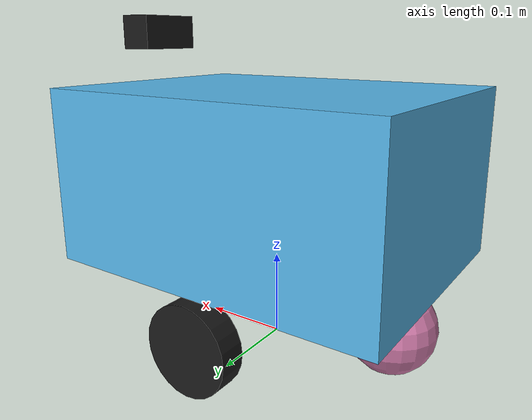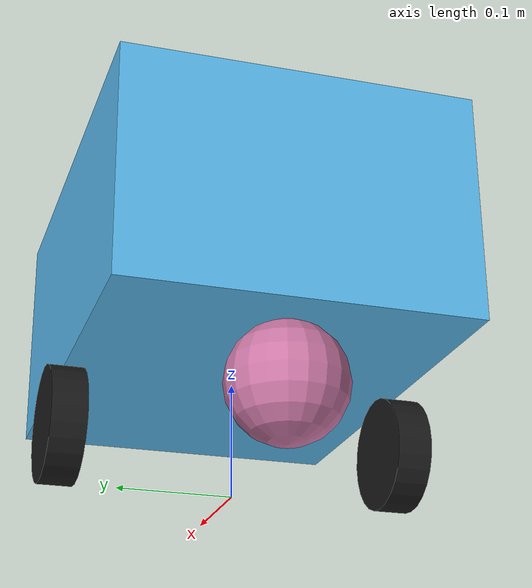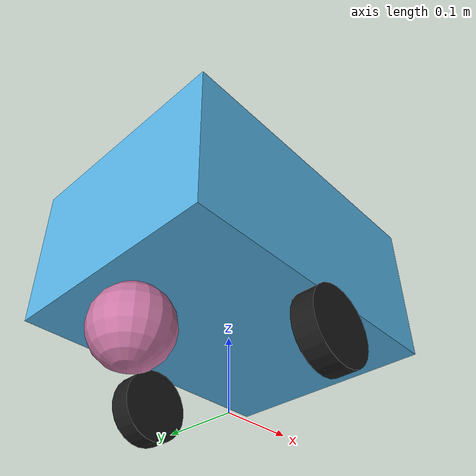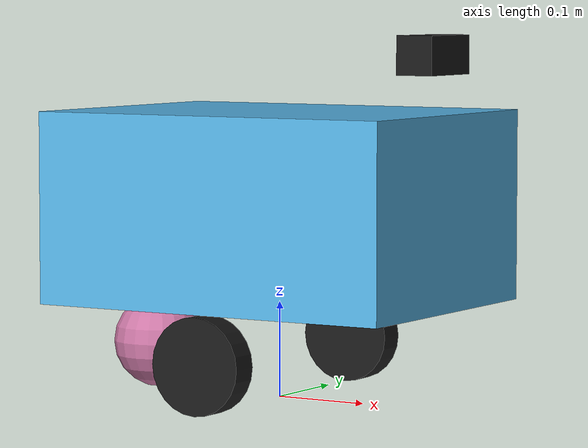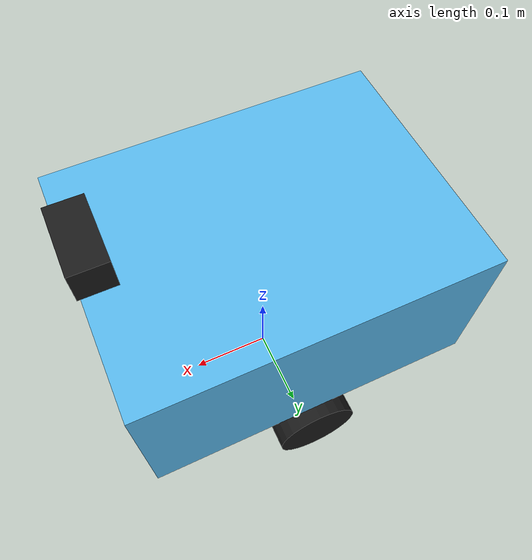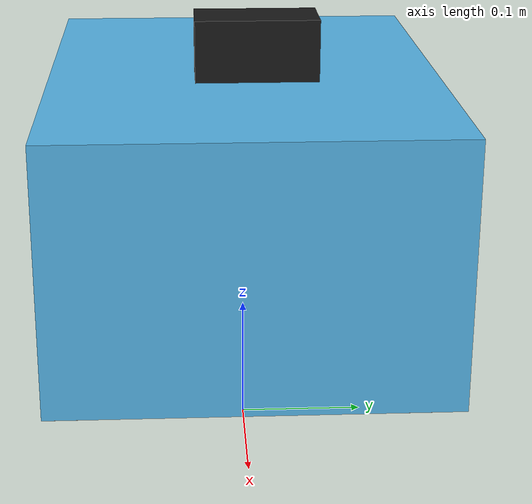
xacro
<?xml version="1.0"?>

<robot
    name="simple_robot"
    xmlns:xacro="http://www.ros.org/wiki/xacro">

    <xacro:property
        name="controllers_file"
        value="$(find robot_description)/config/controllers.yaml"/>

    <link name="base_footprint"/>

    <link name="base_link">
        <visual>
            <origin xyz="0 0 0"
                    rpy="0 0 0"/>

            <geometry>
                <box size="0.4 0.3 0.2"/>
            </geometry>
        </visual>

        <collision>
            <origin xyz="0 0 0"
                    rpy="0 0 0"/>

            <geometry>
                <box size="0.4 0.3 0.2"/>
            </geometry>
        </collision>

        <inertial>
            <origin xyz="0 0 0"
                    rpy="0 0 0"/>
            <mass value="1.0"/>
            <inertia
                ixx="0.0108" ixy="0.0" ixz="0.0"
                iyy="0.0167" iyz="0.0"
                izz="0.0208"/>
        </inertial>
    </link>

    <joint name="base_footprint_to_base_link" type="fixed">
        <parent link="base_footprint"/>
        <child link="base_link"/>
        <origin xyz="0 0 0.2"
                rpy="0 0 0"/>
    </joint>

    <xacro:include filename="$(find robot_description)/urdf/camera.xacro"/>

    <xacro:include filename="$(find robot_description)/urdf/gazebo_sensors.xacro"/>
    <link name="left_wheel_link">
        <visual>
            <origin xyz="0 0 0"
                    rpy="1.5708 0 0"/>
            <geometry>
                <cylinder radius="0.05" length="0.03"/>
            </geometry>
            <material name="black">
                <color rgba="0.1 0.1 0.1 1.0"/>
            </material>
        </visual>

        <collision>
            <origin xyz="0 0 0"
                    rpy="1.5708 0 0"/>

            <geometry>
                <cylinder radius="0.05" length="0.03"/>
            </geometry>
        </collision>

        <inertial>
            <origin xyz="0 0 0"
                    rpy="0 0 0"/>
            <mass value="0.1"/>
            <inertia
                ixx="0.000083" ixy="0.0" ixz="0.0"
                iyy="0.000083" iyz="0.0"
                izz="0.000125"/>
        </inertial>
    </link>

    <joint name="base_link_to_left_wheel_link"
            type="continuous">
        <parent link="base_link"/>
        <child link="left_wheel_link"/>
        <origin xyz="0 0.15 -0.15"
                rpy="0 0 0"/>
        <axis xyz="0 1 0"/>
    </joint>

    <link name="right_wheel_link">
        <visual>
            <origin xyz="0 0 0"
                    rpy="1.5708 0 0"/>
            <geometry>
                <cylinder radius="0.05" length="0.03"/>
            </geometry>
            <material name="black">
                <color rgba="0.1 0.1 0.1 1.0"/>
            </material>
        </visual>

        <collision>
            <origin xyz="0 0 0"
                    rpy="1.5708 0 0"/>

            <geometry>
                <cylinder radius="0.05" length="0.03"/>
            </geometry>
        </collision>

        <inertial>
            <origin xyz="0 0 0"
                    rpy="0 0 0"/>
            <mass value="0.1"/>
            <inertia
                ixx="0.000083" ixy="0.0" ixz="0.0"
                iyy="0.000083" iyz="0.0"
                izz="0.000125"/>
        </inertial>
    </link>

    <joint name="base_link_to_right_wheel_link"
            type="continuous">
        <parent link="base_link"/>
        <child link="right_wheel_link"/>
        <origin xyz="0 -0.15 -0.15"
                rpy="0 0 0"/>
        <axis xyz="0 1 0"/>
    </joint>

    <link name="caster_link">
        <visual>
            <origin xyz="0 0 0" rpy="0 0 0"/>
            <geometry>
                <sphere radius="0.05"/>
            </geometry>
        </visual>

        <collision>
            <origin xyz="0 0 0" rpy="0 0 0"/>
            <geometry>
                <sphere radius="0.05"/>
            </geometry>
        </collision>

        <inertial>
            <origin xyz="0 0 0" rpy="0 0 0"/>
            <mass value="0.05"/>
            <inertia
                ixx="0.0000125" ixy="0.0" ixz="0.0"
                iyy="0.0000125" iyz="0.0"
                izz="0.0000125"/>
        </inertial>
    </link>

    <joint name="base_link_to_caster_link" type="fixed">
        <parent link="base_link"/>
        <child link="caster_link"/>
        <origin xyz="-0.15 0 -0.15" rpy="0 0 0"/>
    </joint>

    <ros2_control
        name="GazeboSystem"
        type="system">
        <hardware>
            <plugin>gz_ros2_control/GazeboSimSystem</plugin>
        </hardware>

        <joint name="base_link_to_left_wheel_link">
            <command_interface name="velocity"/>
            <state_interface name="position"/>
            <state_interface name="velocity"/>
        </joint>

        <joint name="base_link_to_right_wheel_link">
            <command_interface name="velocity"/>
            <state_interface name="position"/>
            <state_interface name="velocity"/>
        </joint>
    </ros2_control>

    <gazebo>
        <plugin filename="gz_ros2_control-system"
                name="gz_ros2_control::GazeboSimROS2ControlPlugin">
            <parameters>/home/cheng/ros_ws/controllers.yaml</parameters>
        </plugin>
    </gazebo>
</robot>

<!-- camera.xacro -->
<robot xmlns:xacro="http://www.ros.org/wiki/xacro">

    <!-- Camera physical link -->
    <link name="camera_link">
        <visual>
            <origin xyz="0 0 0" rpy="0 0 0"/>
            <geometry>
                <box size="0.04 0.08 0.04"/>
            </geometry>
            <material name="black"/>
        </visual>

        <collision>
            <origin xyz="0 0 0" rpy="0 0 0"/>
            <geometry>
                <box size="0.04 0.08 0.04"/>
            </geometry>
        </collision>

        <inertial>
            <origin xyz="0 0 0" rpy="0 0 0"/>
            <mass value="0.05"/>
            <inertia
                ixx="0.00003"
                ixy="0.0"
                ixz="0.0"
                iyy="0.00001"
                iyz="0.0"
                izz="0.00003"/>
        </inertial>
    </link>

    <joint name="base_link_to_camera_link" type="fixed">
        <parent link="base_link"/>
        <child link="camera_link"/>
        <origin xyz="0.18 0 0.16" rpy="0 0 0"/>
    </joint>

    <link name="camera_optical_frame"/>

    <joint name="camera_link_to_camera_optical_frame" type="fixed">
        <parent link="camera_link"/>
        <child link="camera_optical_frame"/>
        <origin xyz="0 0 0" rpy="-1.5708 0 -1.5708"/>
    </joint>

</robot>
